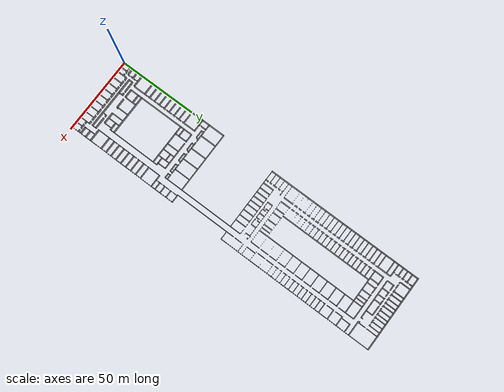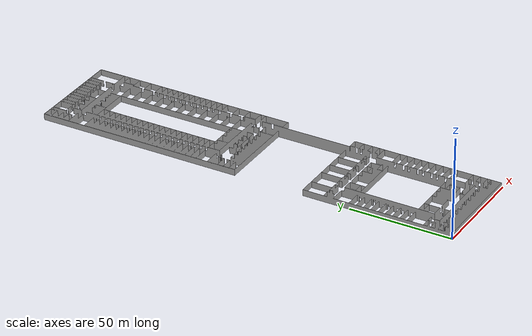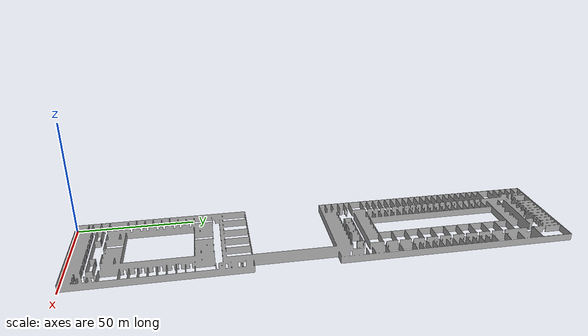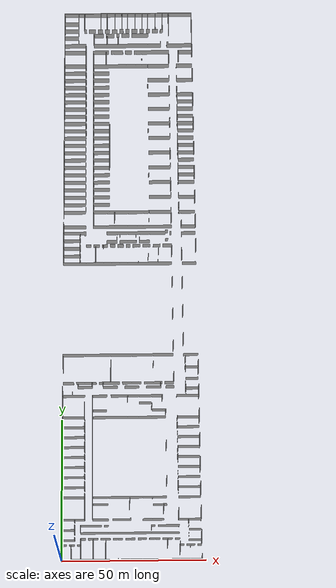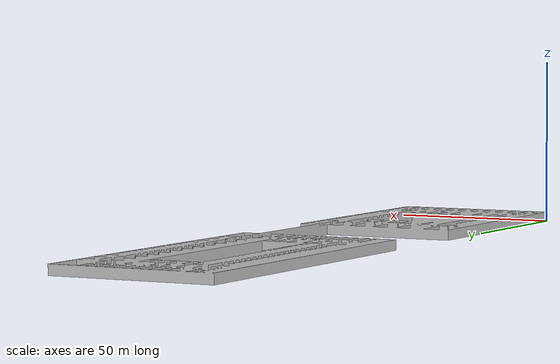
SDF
<?xml version="1.0" ?>
<sdf version="1.5">
  <model name="Povo">
    <static>true</static>

    <link name="link">
      <collision name="collision">
        <geometry>
          <mesh>
            <uri>model://povo/meshes/povo.stl</uri>
          </mesh>
        </geometry>
      </collision>
      <visual name="visual1">
        <geometry>
         <mesh>
            <uri>model://povo/meshes/povo.stl</uri>
          </mesh>
        </geometry>
      </visual>
    </link>
  </model>
</sdf>
